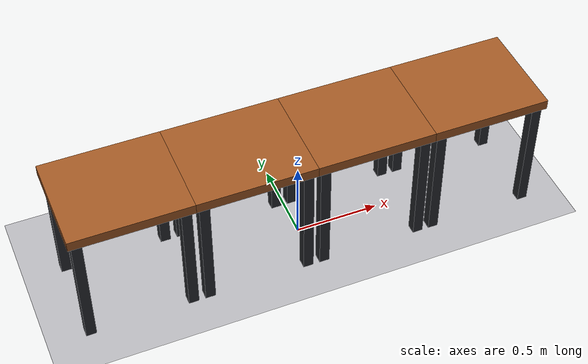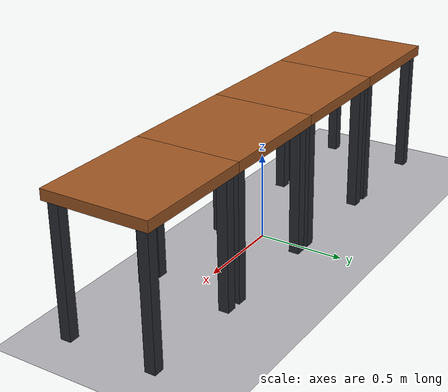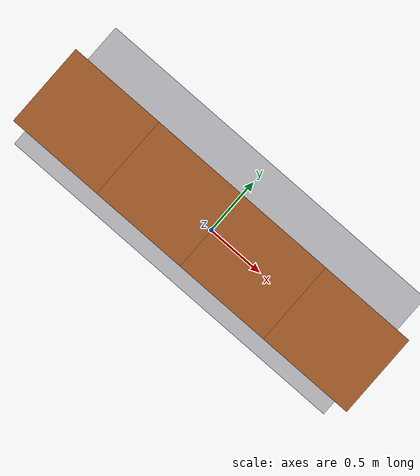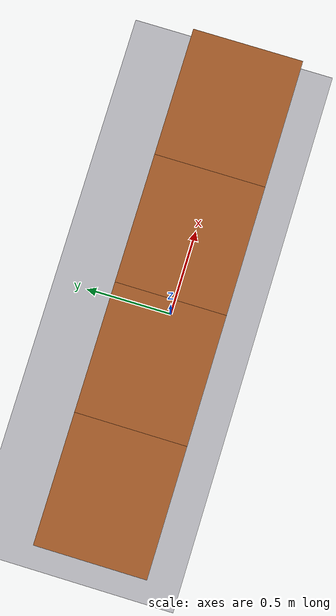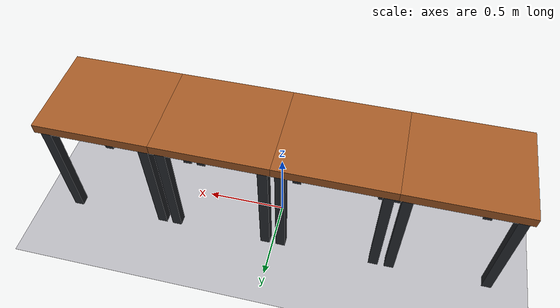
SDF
<?xml version="1.0"?>
<sdf version="1.8">
  <world name="four_tables">
    <physics name="1ms" type="ignored">
      <max_step_size>0.001</max_step_size>
      <real_time_factor>1.0</real_time_factor>
    </physics>

    <plugin filename="gz-sim-physics-system" name="gz::sim::systems::Physics"/>
    <plugin filename="gz-sim-sensors-system" name="gz::sim::systems::Sensors">
      <render_engine>ogre2</render_engine>
    </plugin>
    <plugin filename="gz-sim-user-commands-system" name="gz::sim::systems::UserCommands"/>
    <plugin filename="gz-sim-scene-broadcaster-system" name="gz::sim::systems::SceneBroadcaster"/>
    <plugin filename="gz-sim-imu-system" name="gz::sim::systems::Imu"/>

    <light type="directional" name="sun">
      <cast_shadows>true</cast_shadows>
      <pose>0 0 8 0 0 0</pose>
      <diffuse>0.9 0.9 0.9 1</diffuse>
      <specular>0.3 0.3 0.3 1</specular>
      <attenuation>
        <range>1000</range>
        <constant>0.9</constant>
        <linear>0.01</linear>
        <quadratic>0.001</quadratic>
      </attenuation>
      <direction>-0.4 0.3 -0.9</direction>
    </light>

    <model name="ground_plane">
      <static>true</static>
      <link name="link">
        <collision name="collision">
          <geometry>
            <plane>
              <normal>0 0 1</normal>
              <size>20 20</size>
            </plane>
          </geometry>
        </collision>
        <visual name="visual">
          <geometry>
            <plane>
              <normal>0 0 1</normal>
              <size>20 20</size>
            </plane>
          </geometry>
          <material>
            <ambient>0.7 0.7 0.72 1</ambient>
            <diffuse>0.7 0.7 0.72 1</diffuse>
          </material>
        </visual>
      </link>
    </model>

    <include>
      <uri>model://table</uri>
      <name>table_1</name>
      <pose>-1.05 0 0 0 0 0</pose>
    </include>
    <include>
      <uri>model://table</uri>
      <name>table_2</name>
      <pose>-0.35 0 0 0 0 0</pose>
    </include>
    <include>
      <uri>model://table</uri>
      <name>table_3</name>
      <pose>0.35 0 0 0 0 0</pose>
    </include>
    <include>
      <uri>model://table</uri>
      <name>table_4</name>
      <pose>1.05 0 0 0 0 0</pose>
    </include>

    <scene>
      <ambient>0.55 0.55 0.55 1</ambient>
      <background>0.75 0.82 0.9 1</background>
      <shadows>true</shadows>
    </scene>

    <gui fullscreen="0">
      <camera name="user_camera">
        <pose>3.7 -4.2 3.1 0 0.55 2.25</pose>
        <view_controller>orbit</view_controller>
        <projection_type>perspective</projection_type>
      </camera>
    </gui>
  </world>
</sdf>

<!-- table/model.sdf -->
<sdf version="1.8">
  <model name="table">
    <static>true</static>
    <link name="table_link">
      <visual name="tabletop_visual">
        <pose>0 0 0.77 0 0 0</pose>
        <geometry><box><size>0.70 0.60 0.06</size></box></geometry>
        <material>
          <ambient>0.42 0.22 0.09 1</ambient>
          <diffuse>0.62 0.34 0.14 1</diffuse>
          <specular>0.18 0.18 0.18 1</specular>
        </material>
      </visual>
      <collision name="tabletop_collision">
        <pose>0 0 0.77 0 0 0</pose>
        <geometry><box><size>0.70 0.60 0.06</size></box></geometry>
      </collision>

      <visual name="leg_front_left_visual">
        <pose>0.30 0.25 0.37 0 0 0</pose>
        <geometry><box><size>0.06 0.06 0.74</size></box></geometry>
        <material><diffuse>0.16 0.17 0.19 1</diffuse></material>
      </visual>
      <collision name="leg_front_left_collision">
        <pose>0.30 0.25 0.37 0 0 0</pose>
        <geometry><box><size>0.06 0.06 0.74</size></box></geometry>
      </collision>

      <visual name="leg_front_right_visual">
        <pose>0.30 -0.25 0.37 0 0 0</pose>
        <geometry><box><size>0.06 0.06 0.74</size></box></geometry>
        <material><diffuse>0.16 0.17 0.19 1</diffuse></material>
      </visual>
      <collision name="leg_front_right_collision">
        <pose>0.30 -0.25 0.37 0 0 0</pose>
        <geometry><box><size>0.06 0.06 0.74</size></box></geometry>
      </collision>

      <visual name="leg_back_left_visual">
        <pose>-0.30 0.25 0.37 0 0 0</pose>
        <geometry><box><size>0.06 0.06 0.74</size></box></geometry>
        <material><diffuse>0.16 0.17 0.19 1</diffuse></material>
      </visual>
      <collision name="leg_back_left_collision">
        <pose>-0.30 0.25 0.37 0 0 0</pose>
        <geometry><box><size>0.06 0.06 0.74</size></box></geometry>
      </collision>

      <visual name="leg_back_right_visual">
        <pose>-0.30 -0.25 0.37 0 0 0</pose>
        <geometry><box><size>0.06 0.06 0.74</size></box></geometry>
        <material><diffuse>0.16 0.17 0.19 1</diffuse></material>
      </visual>
      <collision name="leg_back_right_collision">
        <pose>-0.30 -0.25 0.37 0 0 0</pose>
        <geometry><box><size>0.06 0.06 0.74</size></box></geometry>
      </collision>
    </link>
  </model>
</sdf>
